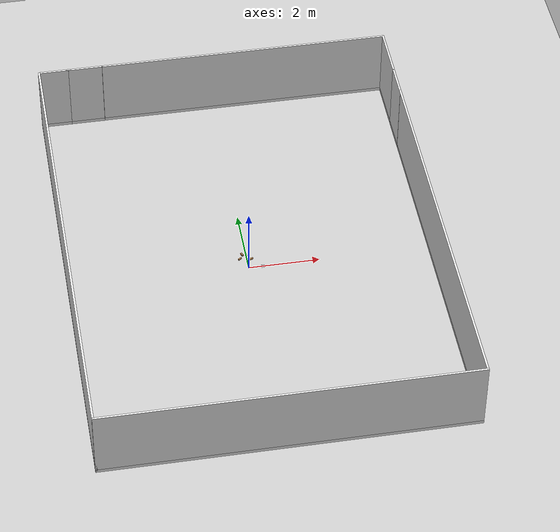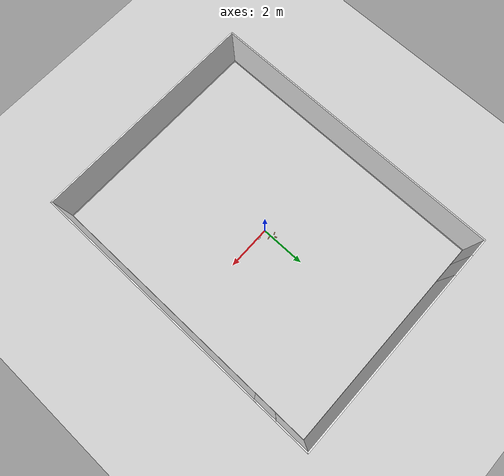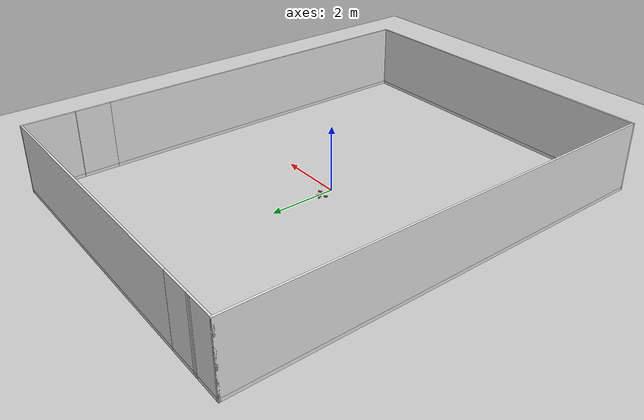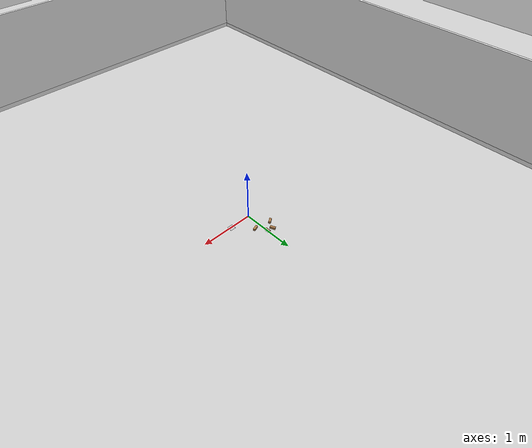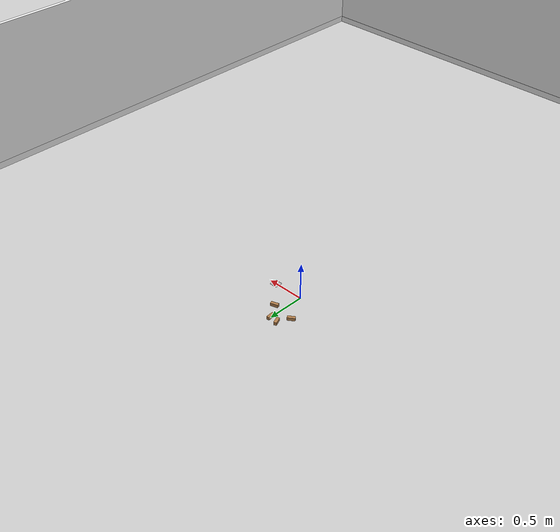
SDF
<sdf version="1.6">
 <world name="megaweb">
  <physics name="default_physics" default="0" type="ode">
   <max_step_size>0.001</max_step_size>
   <real_time_factor>1</real_time_factor>
   <real_time_update_rate>1000</real_time_update_rate>
  </physics>
  <scene><ambient>1 1 1 1</ambient><background>0.7 0.7 0.7 1</background><shadows>1</shadows></scene>
  <model name="ground_plane">
   <static>1</static>
   <link name="link">
    <collision name="collision">
     <geometry><plane><normal>0 0 1</normal><size>100 100</size></plane></geometry>
     <surface><friction><ode><mu>100</mu><mu2>50</mu2></ode></friction></surface>
    </collision>
    <visual name="visual">
     <cast_shadows>0</cast_shadows>
     <geometry><plane><normal>0 0 1</normal><size>100 100</size></plane></geometry>
     <material>
      <script><uri>file://media/materials/scripts/gazebo.material</uri><name>Gazebo/Grey</name></script>
     </material>
    </visual>
   </link>
  </model>
  <light name="floorlight1" type="spot">
   <pose>-3 -3 4 0 -0 0</pose>
   <diffuse>0.8 0.8 0.8 1</diffuse>
   <specular>0.2 0.2 0.2 1</specular>
   <attenuation>
    <range>10</range>
    <constant>0.9</constant>
    <linear>0.2</linear>
    <quadratic>0.001</quadratic>
   </attenuation>
   <spot><inner_angle>0.1</inner_angle><outer_angle>3.14</outer_angle><falloff>0.01</falloff></spot>
   <direction>0 0 -1</direction>
  </light>
  <light name="floorlight2" type="spot">
   <pose>-6 -3 4 0 -0 0</pose>
   <diffuse>0.8 0.8 0.8 1</diffuse>
   <specular>0.2 0.2 0.2 1</specular>
   <attenuation>
    <range>10</range>
    <constant>0.9</constant>
    <linear>0.2</linear>
    <quadratic>0.001</quadratic>
   </attenuation>
   <spot><inner_angle>0.1</inner_angle><outer_angle>3.14</outer_angle><falloff>0.01</falloff></spot>
   <direction>0 0 -1</direction>
  </light>
  <light name="floorlight3" type="spot">
   <pose>-3 -6 4 0 -0 0</pose>
   <diffuse>0.8 0.8 0.8 1</diffuse>
   <specular>0.2 0.2 0.2 1</specular>
   <attenuation>
    <range>10</range>
    <constant>0.9</constant>
    <linear>0.2</linear>
    <quadratic>0.001</quadratic>
   </attenuation>
   <spot><inner_angle>0.1</inner_angle><outer_angle>3.14</outer_angle><falloff>0.01</falloff></spot>
   <direction>0 0 -1</direction>
  </light>
  <light name="floorlight4" type="spot">
   <pose>-6 -6 4 0 -0 0</pose>
   <diffuse>0.8 0.8 0.8 1</diffuse>
   <specular>0.2 0.2 0.2 1</specular>
   <attenuation>
    <range>10</range>
    <constant>0.9</constant>
    <linear>0.2</linear>
    <quadratic>0.001</quadratic>
   </attenuation>
   <spot><inner_angle>0.1</inner_angle><outer_angle>3.14</outer_angle><falloff>0.01</falloff></spot>
   <direction>0 0 -1</direction>
  </light>
  <gravity>0 0 -9.8</gravity>
  <magnetic_field>6e-06 2.3e-05 -4.2e-05</magnetic_field>
  <atmosphere type="adiabatic"/>
  <spherical_coordinates>
   <surface_model>EARTH_WGS84</surface_model>
   <latitude_deg>0</latitude_deg>
   <longitude_deg>0</longitude_deg>
   <elevation>0</elevation>
   <heading_deg>0</heading_deg>
  </spherical_coordinates>
  <model name="full_outside_wall">
   <link name="link">
    <inertial>
     <mass>50</mass>
     <inertia><ixx>1</ixx><ixy>0</ixy><ixz>0</ixz><iyy>1</iyy><iyz>0</iyz><izz>1</izz></inertia>
    </inertial>
    <visual name="x00_13y00_bottom_frame">
     <pose>5.0375 -0.0275 0.05 0 -0 0</pose>
     <geometry><box><size>10.185 0.055 0.1</size></box></geometry>
     <material>
      <script><uri>model://base_materials/color/scripts</uri><name>hsr_color/white</name></script>
     </material>
    </visual>
    <collision name="x00_13y00_collision_bottom_frame">
     <pose>5.0375 -0.0275 0.05 0 -0 0</pose>
     <geometry><box><size>10.185 0.055 0.1</size></box></geometry>
    </collision>
    <visual name="wall_x00_13y00">
     <pose>5.0375 -0.0275 1.095 0 -0 0</pose>
     <geometry><box><size>10.185 0.055 1.99</size></box></geometry>
     <material>
      <script>
       <uri>model://base_materials/wall/scripts</uri>
       <uri>model://base_materials/wall/textures</uri>
       <name>wall/white_noise</name>
      </script>
     </material>
    </visual>
    <collision name="wall_x00_13y00">
     <pose>5.0375 -0.002 1.095 0 -0 0</pose>
     <geometry><box><size>10.08 0.055 1.99</size></box></geometry>
    </collision>
    <visual name="x00y00_15_bottom_frame">
     <pose>-0.0275 6.59 0.05 0 -0 0</pose>
     <geometry><box><size>0.055 13.29 0.1</size></box></geometry>
     <material>
      <script><uri>model://base_materials/color/scripts</uri><name>hsr_color/white</name></script>
     </material>
    </visual>
    <collision name="x00y00_15_collision_bottom_frame">
     <pose>-0.0275 6.59 0.05 0 -0 0</pose>
     <geometry><box><size>0.055 13.29 0.1</size></box></geometry>
    </collision>
    <visual name="wall_x00y00_15">
     <pose>-0.0275 6.59 1.095 0 -0 0</pose>
     <geometry><box><size>0.055 13.29 1.99</size></box></geometry>
     <material>
      <script>
       <uri>model://base_materials/wall/scripts</uri>
       <uri>model://base_materials/wall/textures</uri>
       <name>wall/white_noise</name>
      </script>
     </material>
    </visual>
    <collision name="wall_x00y00_x00y15">
     <pose>-0.002 6.59 1.095 0 -0 0</pose>
     <geometry><box><size>0.002 13.29 1.99</size></box></geometry>
    </collision>
    <visual name="x13y00_12_bottom_frame">
     <pose>10.1025 5.3725 0.05 0 -0 0</pose>
     <geometry><box><size>0.055 10.855 0.1</size></box></geometry>
     <material>
      <script><uri>model://base_materials/color/scripts</uri><name>hsr_color/white</name></script>
     </material>
    </visual>
    <collision name="x13y00_12_collision_bottom_frame">
     <pose>10.1025 5.3725 0.05 0 -0 0</pose>
     <geometry><box><size>0.055 10.855 0.1</size></box></geometry>
    </collision>
    <visual name="wall_x13y00_12">
     <pose>10.1025 5.3725 1.095 0 -0 0</pose>
     <geometry><box><size>0.055 10.855 1.99</size></box></geometry>
     <material>
      <script>
       <uri>model://base_materials/wall/scripts</uri>
       <uri>model://base_materials/wall/textures</uri>
       <name>wall/white_noise</name>
      </script>
     </material>
    </visual>
    <collision name="wall_x13y00_12">
     <pose>10.1025 5.3725 1.095 0 -0 0</pose>
     <geometry><box><size>0.055 10.855 1.99</size></box></geometry>
    </collision>
    <visual name="x13y14_16_bottom_frame">
     <pose>10.1025 12.4675 0.05 0 -0 0</pose>
     <geometry><box><size>0.055 1.535 0.1</size></box></geometry>
     <material>
      <script><uri>model://base_materials/color/scripts</uri><name>hsr_color/white</name></script>
     </material>
    </visual>
    <collision name="x13y14_16_collision_bottom_frame">
     <pose>10.1025 12.4675 0.05 0 -0 0</pose>
     <geometry><box><size>0.055 1.535 0.1</size></box></geometry>
    </collision>
    <visual name="wall_x13y14_x13y16">
     <pose>10.1025 12.4675 1.095 0 -0 0</pose>
     <geometry><box><size>0.055 1.535 1.99</size></box></geometry>
     <material>
      <script>
       <uri>model://base_materials/wall/scripts</uri>
       <uri>model://base_materials/wall/textures</uri>
       <name>wall/white_noise</name>
      </script>
     </material>
    </visual>
    <collision name="wall_x13y14_x13y16">
     <pose>10.1025 12.4675 1.095 0 -0 0</pose>
     <geometry><box><size>0.055 1.535 1.99</size></box></geometry>
    </collision>
    <visual name="x00_01y16_bottom_frame">
     <pose>0.4225 13.2075 0.05 0 -0 0</pose>
     <geometry><box><size>0.955 0.055 0.1</size></box></geometry>
     <material>
      <script><uri>model://base_materials/color/scripts</uri><name>hsr_color/white</name></script>
     </material>
    </visual>
    <collision name="x00_01y16_collision_bottom_frame">
     <pose>0.4225 13.2075 0.05 0 -0 0</pose>
     <geometry><box><size>0.955 0.055 0.1</size></box></geometry>
    </collision>
    <visual name="wall_x00_01y16">
     <pose>0.4225 13.2075 1.095 0 -0 0</pose>
     <geometry><box><size>0.955 0.055 1.99</size></box></geometry>
     <material>
      <script>
       <uri>model://base_materials/wall/scripts</uri>
       <uri>model://base_materials/wall/textures</uri>
       <name>wall/white_noise</name>
      </script>
     </material>
    </visual>
    <collision name="wall_x00_x01y16">
     <pose>0.4225 13.2075 1.095 0 -0 0</pose>
     <geometry><box><size>0.955 0.055 1.99</size></box></geometry>
    </collision>
    <visual name="x03_13y16_bottom_frame">
     <pose>5.965 13.2075 0.05 0 -0 0</pose>
     <geometry><box><size>8.33 0.05 0.1</size></box></geometry>
     <material>
      <script><uri>model://base_materials/color/scripts</uri><name>hsr_color/white</name></script>
     </material>
    </visual>
    <collision name="x03_13y16_collision_bottom_frame">
     <pose>5.965 13.2075 0.05 0 -0 0</pose>
     <geometry><box><size>8.33 0.05 0.1</size></box></geometry>
    </collision>
    <visual name="wall_x03_13y16">
     <pose>5.965 13.2075 1.095 0 -0 0</pose>
     <geometry><box><size>8.33 0.055 1.99</size></box></geometry>
     <material>
      <script>
       <uri>model://base_materials/wall/scripts</uri>
       <uri>model://base_materials/wall/textures</uri>
       <name>wall/white_noise</name>
      </script>
     </material>
    </visual>
    <collision name="wall_x03_13y16">
     <pose>5.965 13.2075 1.095 0 -0 0</pose>
     <geometry><box><size>8.33 0.055 1.99</size></box></geometry>
    </collision>
    <velocity_decay><linear>0</linear><angular>0</angular></velocity_decay>
   </link>
   <static>1</static>
   <pose>-5 -6.5 0 0 -0 0</pose>
  </model>
  <model name="full_wall_55_900_2090">
   <link name="link">
    <inertial>
     <mass>50</mass>
     <inertia><ixx>1</ixx><ixy>0</ixy><ixz>0</ixz><iyy>1</iyy><iyz>0</iyz><izz>1</izz></inertia>
    </inertial>
    <visual name="bottom_frame">
     <pose>0 0 0.05 0 -0 0</pose>
     <geometry><box><size>0.055 1.04 0.1</size></box></geometry>
     <material>
      <script><uri>model://base_materials/color/scripts</uri><name>hsr_color/white</name></script>
     </material>
    </visual>
    <collision name="collision_bottom_frame">
     <pose>0 0 0.05 0 -0 0</pose>
     <geometry><box><size>0.055 1.04 0.1</size></box></geometry>
    </collision>
    <visual name="wall">
     <pose>0 0 1.095 0 -0 0</pose>
     <geometry><box><size>0.055 1.04 1.99</size></box></geometry>
     <material>
      <script>
       <uri>model://base_materials/wall/scripts</uri>
       <uri>model://base_materials/wall/textures</uri>
       <name>wall/white_noise</name>
      </script>
     </material>
    </visual>
    <collision name="collision_wall">
     <pose>0 0 1.095 0 -0 0</pose>
     <geometry><box><size>0.055 1.04 1.99</size></box></geometry>
    </collision>
    <velocity_decay><linear>0</linear><angular>0</angular></velocity_decay>
   </link>
   <static>1</static>
   <pose>5.1 4.67156 0 0 -0 0</pose>
  </model>
  <model name="full_wall_55_900_2090_0">
   <link name="link">
    <inertial>
     <mass>50</mass>
     <inertia><ixx>1</ixx><ixy>0</ixy><ixz>0</ixz><iyy>1</iyy><iyz>0</iyz><izz>1</izz></inertia>
    </inertial>
    <visual name="bottom_frame">
     <pose>0 0 0.05 0 -0 0</pose>
     <geometry><box><size>0.055 1.04 0.1</size></box></geometry>
     <material>
      <script><uri>model://base_materials/color/scripts</uri><name>hsr_color/white</name></script>
     </material>
    </visual>
    <collision name="collision_bottom_frame">
     <pose>0 0 0.05 0 -0 0</pose>
     <geometry><box><size>0.055 1.04 0.1</size></box></geometry>
    </collision>
    <visual name="wall">
     <pose>0 0 1.095 0 -0 0</pose>
     <geometry><box><size>0.055 1.04 1.99</size></box></geometry>
     <material>
      <script>
       <uri>model://base_materials/wall/scripts</uri>
       <uri>model://base_materials/wall/textures</uri>
       <name>wall/white_noise</name>
      </script>
     </material>
    </visual>
    <collision name="collision_wall">
     <pose>0 0 1.095 0 -0 0</pose>
     <geometry><box><size>0.055 1.04 1.99</size></box></geometry>
    </collision>
    <velocity_decay><linear>0</linear><angular>0</angular></velocity_decay>
   </link>
   <static>1</static>
   <pose>-3.72484 6.70714 0 0 -0 1.57</pose>
  </model>
  <model name="wood_block_10_2_1cm">
   <link name="link">
    <pose>-0 -0 0.005 0 -0 0</pose>
    <inertial>
     <mass>0.0125</mass>
     <inertia>
      <ixx>7.6e-07</ixx>
      <ixy>0</ixy>
      <ixz>0</ixz>
      <iyy>1.052e-05</iyy>
      <iyz>0</iyz>
      <izz>1.107e-05</izz>
     </inertia>
    </inertial>
    <visual name="visual">
     <geometry><box><size>0.1 0.04 0.04</size></box></geometry>
     <material>
      <script><uri>file://media/materials/scripts/gazebo.material</uri><name>Gazebo/Wood</name></script>
      <ambient>1 1 1 1</ambient>
      <diffuse>1 1 1 1</diffuse>
      <specular>0.2 0.2 0.2 1</specular>
      <emissive>0 0 0 1</emissive>
      <lighting>0</lighting>
      <shader type="vertex"><normal_map>__default__</normal_map></shader>
     </material>
    </visual>
    <collision name="collision">
     <geometry><box><size>0.1 0.04 0.04</size></box></geometry>
     <surface>
      <friction>
       <ode><mu>1</mu><mu2>1</mu2><fdir1>0 0 0</fdir1><slip1>0</slip1><slip2>0</slip2></ode>
       <torsional>
        <coefficient>1</coefficient>
        <patch_radius>0</patch_radius>
        <surface_radius>0.05</surface_radius>
        <use_patch_radius>0</use_patch_radius>
        <ode><slip>0</slip></ode>
       </torsional>
      </friction>
      <bounce><restitution_coefficient>0</restitution_coefficient><threshold>1e+06</threshold></bounce>
      <contact>
       <collide_without_contact>0</collide_without_contact>
       <collide_without_contact_bitmask>1</collide_without_contact_bitmask>
       <collide_bitmask>1</collide_bitmask>
       <ode>
        <soft_cfm>0</soft_cfm>
        <soft_erp>0.2</soft_erp>
        <kp>100000</kp>
        <kd>1</kd>
        <max_vel>1</max_vel>
        <min_depth>0.001</min_depth>
       </ode>
       <bullet>
        <split_impulse>1</split_impulse>
        <split_impulse_penetration_threshold>-0.01</split_impulse_penetration_threshold>
        <soft_cfm>0</soft_cfm>
        <soft_erp>0.2</soft_erp>
        <kp>100000</kp>
        <kd>1</kd>
       </bullet>
      </contact>
     </surface>
    </collision>
   </link>
   <static>0</static>
   <pose>0.004509 0.500258 0.024 3.14159 0 1.60689</pose>
  </model>
  <model name="wood_block_10_2_1cm_clone">
   <link name="link">
    <pose>-0 -0 0.005 0 -0 0</pose>
    <inertial>
     <mass>0.0125</mass>
     <inertia>
      <ixx>7.6e-07</ixx>
      <ixy>0</ixy>
      <ixz>0</ixz>
      <iyy>1.052e-05</iyy>
      <iyz>0</iyz>
      <izz>1.107e-05</izz>
     </inertia>
    </inertial>
    <visual name="visual">
     <geometry><box><size>0.1 0.04 0.04</size></box></geometry>
     <material>
      <script><uri>file://media/materials/scripts/gazebo.material</uri><name>Gazebo/Wood</name></script>
      <ambient>1 1 1 1</ambient>
      <diffuse>1 1 1 1</diffuse>
      <specular>0.2 0.2 0.2 1</specular>
      <emissive>0 0 0 1</emissive>
      <lighting>0</lighting>
      <shader type="vertex"><normal_map>__default__</normal_map></shader>
     </material>
    </visual>
    <collision name="collision">
     <geometry><box><size>0.1 0.04 0.04</size></box></geometry>
     <surface>
      <friction>
       <ode><mu>1</mu><mu2>1</mu2><fdir1>0 0 0</fdir1><slip1>0</slip1><slip2>0</slip2></ode>
       <torsional>
        <coefficient>1</coefficient>
        <patch_radius>0</patch_radius>
        <surface_radius>0.05</surface_radius>
        <use_patch_radius>0</use_patch_radius>
        <ode><slip>0</slip></ode>
       </torsional>
      </friction>
      <bounce><restitution_coefficient>0</restitution_coefficient><threshold>1e+06</threshold></bounce>
      <contact>
       <collide_without_contact>0</collide_without_contact>
       <collide_without_contact_bitmask>1</collide_without_contact_bitmask>
       <collide_bitmask>1</collide_bitmask>
       <ode>
        <soft_cfm>0</soft_cfm>
        <soft_erp>0.2</soft_erp>
        <kp>100000</kp>
        <kd>1</kd>
        <max_vel>1</max_vel>
        <min_depth>0.001</min_depth>
       </ode>
       <bullet>
        <split_impulse>1</split_impulse>
        <split_impulse_penetration_threshold>-0.01</split_impulse_penetration_threshold>
        <soft_cfm>0</soft_cfm>
        <soft_erp>0.2</soft_erp>
        <kp>100000</kp>
        <kd>1</kd>
       </bullet>
      </contact>
     </surface>
    </collision>
   </link>
   <static>0</static>
   <pose>0.121594 0.315173 0.014 0 -0 0.328876</pose>
  </model>
  <model name="wood_block_10_2_1cm_clone_0">
   <link name="link">
    <pose>-0 -0 0.005 0 -0 0</pose>
    <inertial>
     <mass>0.0125</mass>
     <inertia>
      <ixx>7.6e-07</ixx>
      <ixy>0</ixy>
      <ixz>0</ixz>
      <iyy>1.052e-05</iyy>
      <iyz>0</iyz>
      <izz>1.107e-05</izz>
     </inertia>
    </inertial>
    <visual name="visual">
     <geometry><box><size>0.1 0.04 0.04</size></box></geometry>
     <material>
      <script><uri>file://media/materials/scripts/gazebo.material</uri><name>Gazebo/Wood</name></script>
      <ambient>1 1 1 1</ambient>
      <diffuse>1 1 1 1</diffuse>
      <specular>0.2 0.2 0.2 1</specular>
      <emissive>0 0 0 1</emissive>
      <lighting>0</lighting>
      <shader type="vertex"><normal_map>__default__</normal_map></shader>
     </material>
    </visual>
    <collision name="collision">
     <geometry><box><size>0.1 0.04 0.04</size></box></geometry>
     <surface>
      <friction>
       <ode><mu>1</mu><mu2>1</mu2><fdir1>0 0 0</fdir1><slip1>0</slip1><slip2>0</slip2></ode>
       <torsional>
        <coefficient>1</coefficient>
        <patch_radius>0</patch_radius>
        <surface_radius>0.05</surface_radius>
        <use_patch_radius>0</use_patch_radius>
        <ode><slip>0</slip></ode>
       </torsional>
      </friction>
      <bounce><restitution_coefficient>0</restitution_coefficient><threshold>1e+06</threshold></bounce>
      <contact>
       <collide_without_contact>0</collide_without_contact>
       <collide_without_contact_bitmask>1</collide_without_contact_bitmask>
       <collide_bitmask>1</collide_bitmask>
       <ode>
        <soft_cfm>0</soft_cfm>
        <soft_erp>0.2</soft_erp>
        <kp>100000</kp>
        <kd>1</kd>
        <max_vel>1</max_vel>
        <min_depth>0.001</min_depth>
       </ode>
       <bullet>
        <split_impulse>1</split_impulse>
        <split_impulse_penetration_threshold>-0.01</split_impulse_penetration_threshold>
        <soft_cfm>0</soft_cfm>
        <soft_erp>0.2</soft_erp>
        <kp>100000</kp>
        <kd>1</kd>
       </bullet>
      </contact>
     </surface>
    </collision>
   </link>
   <static>0</static>
   <pose>-0.191729 0.358736 0.024 -3.14159 -0 0.599263</pose>
  </model>
  <model name="wood_block_10_2_1cm_clone_1">
   <link name="link">
    <pose>-0 -0 0.005 0 -0 0</pose>
    <inertial>
     <mass>0.0125</mass>
     <inertia>
      <ixx>7.6e-07</ixx>
      <ixy>0</ixy>
      <ixz>0</ixz>
      <iyy>1.052e-05</iyy>
      <iyz>0</iyz>
      <izz>1.107e-05</izz>
     </inertia>
    </inertial>
    <visual name="visual">
     <geometry><box><size>0.1 0.04 0.04</size></box></geometry>
     <material>
      <script><uri>file://media/materials/scripts/gazebo.material</uri><name>Gazebo/Wood</name></script>
      <ambient>1 1 1 1</ambient>
      <diffuse>1 1 1 1</diffuse>
      <specular>0.2 0.2 0.2 1</specular>
      <emissive>0 0 0 1</emissive>
      <lighting>0</lighting>
      <shader type="vertex"><normal_map>__default__</normal_map></shader>
     </material>
    </visual>
    <collision name="collision">
     <geometry><box><size>0.1 0.04 0.04</size></box></geometry>
     <surface>
      <friction>
       <ode><mu>1</mu><mu2>1</mu2><fdir1>0 0 0</fdir1><slip1>0</slip1><slip2>0</slip2></ode>
       <torsional>
        <coefficient>1</coefficient>
        <patch_radius>0</patch_radius>
        <surface_radius>0.05</surface_radius>
        <use_patch_radius>0</use_patch_radius>
        <ode><slip>0</slip></ode>
       </torsional>
      </friction>
      <bounce><restitution_coefficient>0</restitution_coefficient><threshold>1e+06</threshold></bounce>
      <contact>
       <collide_without_contact>0</collide_without_contact>
       <collide_without_contact_bitmask>1</collide_without_contact_bitmask>
       <collide_bitmask>1</collide_bitmask>
       <ode>
        <soft_cfm>0</soft_cfm>
        <soft_erp>0.2</soft_erp>
        <kp>100000</kp>
        <kd>1</kd>
        <max_vel>1</max_vel>
        <min_depth>0.001</min_depth>
       </ode>
       <bullet>
        <split_impulse>1</split_impulse>
        <split_impulse_penetration_threshold>-0.01</split_impulse_penetration_threshold>
        <soft_cfm>0</soft_cfm>
        <soft_erp>0.2</soft_erp>
        <kp>100000</kp>
        <kd>1</kd>
       </bullet>
      </contact>
     </surface>
    </collision>
   </link>
   <static>0</static>
   <pose>-0.107591 0.515876 0.024 3.14159 -0 1.97476</pose>
  </model>
  <model name="my_mesh">
   <pose>0.405886 0.003235 0 0 -0 0</pose>
   <static>1</static>
   <link name="body">
    <visual name="visual">
     <geometry><box><size>0.105 0.105 0.0001</size></box></geometry>
     <material>
      <script>
       <uri>model://marker/0008/scripts</uri>
       <uri>model://marker/0008/textures</uri>
       <name>Marker/0003</name>
      </script>
     </material>
    </visual>
   </link>
  </model>
 </world>
</sdf>
